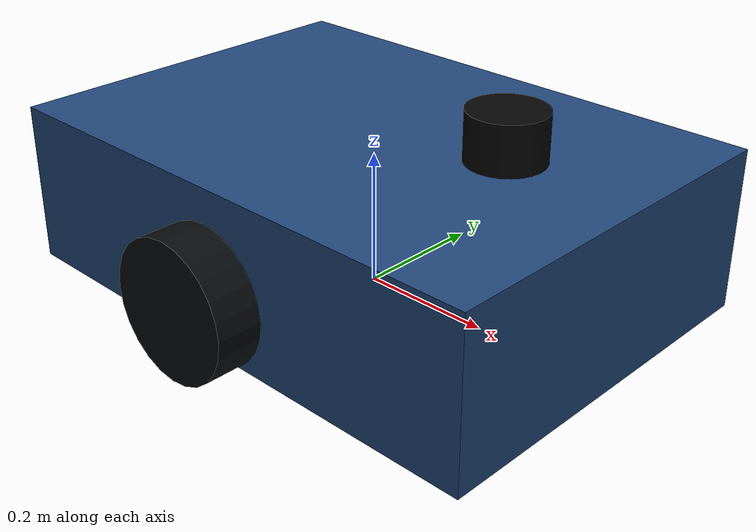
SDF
<?xml version="1.0"?>
<sdf version="1.9">
  <model name="amr_demo_robot">
    <pose>0 0 0 0 0 0</pose>
    <static>false</static>
    <self_collide>false</self_collide>

    <link name="base_link">
      <pose>0 0 0.12 0 0 0</pose>
      <inertial>
        <mass>38.0</mass>
        <inertia>
          <ixx>1.25</ixx>
          <ixy>0.0</ixy>
          <ixz>0.0</ixz>
          <iyy>1.65</iyy>
          <iyz>0.0</iyz>
          <izz>2.10</izz>
        </inertia>
      </inertial>
      <collision name="base_collision">
        <geometry>
          <box>
            <size>0.82 0.58 0.24</size>
          </box>
        </geometry>
      </collision>
      <visual name="base_visual">
        <geometry>
          <box>
            <size>0.82 0.58 0.24</size>
          </box>
        </geometry>
        <material>
          <ambient>0.13 0.28 0.48 1.0</ambient>
          <diffuse>0.13 0.28 0.48 1.0</diffuse>
        </material>
      </visual>
    </link>

    <link name="left_wheel">
      <pose>0 0.335 0.10 1.57079632679 0 0</pose>
      <inertial>
        <mass>2.2</mass>
        <inertia>
          <ixx>0.012</ixx>
          <ixy>0.0</ixy>
          <ixz>0.0</ixz>
          <iyy>0.012</iyy>
          <iyz>0.0</iyz>
          <izz>0.020</izz>
        </inertia>
      </inertial>
      <collision name="left_wheel_collision">
        <geometry>
          <cylinder>
            <radius>0.10</radius>
            <length>0.065</length>
          </cylinder>
        </geometry>
        <surface>
          <friction>
            <ode>
              <mu>1.0</mu>
              <mu2>1.0</mu2>
            </ode>
          </friction>
        </surface>
      </collision>
      <visual name="left_wheel_visual">
        <geometry>
          <cylinder>
            <radius>0.10</radius>
            <length>0.065</length>
          </cylinder>
        </geometry>
        <material>
          <ambient>0.03 0.04 0.05 1.0</ambient>
          <diffuse>0.03 0.04 0.05 1.0</diffuse>
        </material>
      </visual>
    </link>

    <link name="right_wheel">
      <pose>0 -0.335 0.10 1.57079632679 0 0</pose>
      <inertial>
        <mass>2.2</mass>
        <inertia>
          <ixx>0.012</ixx>
          <ixy>0.0</ixy>
          <ixz>0.0</ixz>
          <iyy>0.012</iyy>
          <iyz>0.0</iyz>
          <izz>0.020</izz>
        </inertia>
      </inertial>
      <collision name="right_wheel_collision">
        <geometry>
          <cylinder>
            <radius>0.10</radius>
            <length>0.065</length>
          </cylinder>
        </geometry>
        <surface>
          <friction>
            <ode>
              <mu>1.0</mu>
              <mu2>1.0</mu2>
            </ode>
          </friction>
        </surface>
      </collision>
      <visual name="right_wheel_visual">
        <geometry>
          <cylinder>
            <radius>0.10</radius>
            <length>0.065</length>
          </cylinder>
        </geometry>
        <material>
          <ambient>0.03 0.04 0.05 1.0</ambient>
          <diffuse>0.03 0.04 0.05 1.0</diffuse>
        </material>
      </visual>
    </link>

    <link name="front_caster">
      <pose>0.33 0 0.055 0 0 0</pose>
      <inertial>
        <mass>0.4</mass>
        <inertia>
          <ixx>0.001</ixx>
          <ixy>0.0</ixy>
          <ixz>0.0</ixz>
          <iyy>0.001</iyy>
          <iyz>0.0</iyz>
          <izz>0.001</izz>
        </inertia>
      </inertial>
      <collision name="front_caster_collision">
        <geometry>
          <sphere>
            <radius>0.045</radius>
          </sphere>
        </geometry>
        <surface>
          <friction>
            <ode>
              <mu>0.15</mu>
              <mu2>0.15</mu2>
            </ode>
          </friction>
        </surface>
      </collision>
      <visual name="front_caster_visual">
        <geometry>
          <sphere>
            <radius>0.045</radius>
          </sphere>
        </geometry>
        <material>
          <ambient>0.20 0.20 0.22 1.0</ambient>
          <diffuse>0.20 0.20 0.22 1.0</diffuse>
        </material>
      </visual>
    </link>

    <link name="lidar_link">
      <pose>0.23 0 0.295 0 0 0</pose>
      <inertial>
        <mass>0.45</mass>
        <inertia>
          <ixx>0.002</ixx>
          <ixy>0.0</ixy>
          <ixz>0.0</ixz>
          <iyy>0.002</iyy>
          <iyz>0.0</iyz>
          <izz>0.002</izz>
        </inertia>
      </inertial>
      <collision name="lidar_collision">
        <geometry>
          <cylinder>
            <radius>0.055</radius>
            <length>0.07</length>
          </cylinder>
        </geometry>
      </collision>
      <visual name="lidar_visual">
        <geometry>
          <cylinder>
            <radius>0.055</radius>
            <length>0.07</length>
          </cylinder>
        </geometry>
        <material>
          <ambient>0.02 0.02 0.02 1.0</ambient>
          <diffuse>0.02 0.02 0.02 1.0</diffuse>
        </material>
      </visual>
      <sensor name="front_lidar" type="gpu_lidar">
        <pose>0 0 0.04 0 0 0</pose>
        <topic>/scan</topic>
        <update_rate>10</update_rate>
        <lidar>
          <scan>
            <horizontal>
              <samples>360</samples>
              <resolution>1</resolution>
              <min_angle>-3.14159</min_angle>
              <max_angle>3.14159</max_angle>
            </horizontal>
          </scan>
          <range>
            <min>0.08</min>
            <max>8.0</max>
            <resolution>0.01</resolution>
          </range>
        </lidar>
        <always_on>true</always_on>
        <visualize>true</visualize>
      </sensor>
    </link>

    <joint name="left_wheel_joint" type="revolute">
      <parent>base_link</parent>
      <child>left_wheel</child>
      <axis>
        <xyz>0 1 0</xyz>
        <limit>
          <lower>-1e16</lower>
          <upper>1e16</upper>
        </limit>
      </axis>
    </joint>

    <joint name="right_wheel_joint" type="revolute">
      <parent>base_link</parent>
      <child>right_wheel</child>
      <axis>
        <xyz>0 1 0</xyz>
        <limit>
          <lower>-1e16</lower>
          <upper>1e16</upper>
        </limit>
      </axis>
    </joint>

    <joint name="front_caster_joint" type="fixed">
      <parent>base_link</parent>
      <child>front_caster</child>
    </joint>

    <joint name="lidar_joint" type="fixed">
      <parent>base_link</parent>
      <child>lidar_link</child>
    </joint>

    <plugin filename="gz-sim-diff-drive-system" name="gz::sim::systems::DiffDrive">
      <left_joint>left_wheel_joint</left_joint>
      <right_joint>right_wheel_joint</right_joint>
      <wheel_separation>0.67</wheel_separation>
      <wheel_radius>0.10</wheel_radius>
      <odom_publish_frequency>50</odom_publish_frequency>
      <topic>/model/amr_demo_robot/cmd_vel</topic>
      <odom_topic>/model/amr_demo_robot/odometry</odom_topic>
      <tf_topic>/model/amr_demo_robot/tf</tf_topic>
      <frame_id>odom</frame_id>
      <child_frame_id>base_footprint</child_frame_id>
      <min_linear_velocity>-1.0</min_linear_velocity>
      <max_linear_velocity>1.0</max_linear_velocity>
      <min_angular_velocity>-1.5</min_angular_velocity>
      <max_angular_velocity>1.5</max_angular_velocity>
      <max_linear_acceleration>1.0</max_linear_acceleration>
      <max_angular_acceleration>2.0</max_angular_acceleration>
    </plugin>
  </model>
</sdf>
